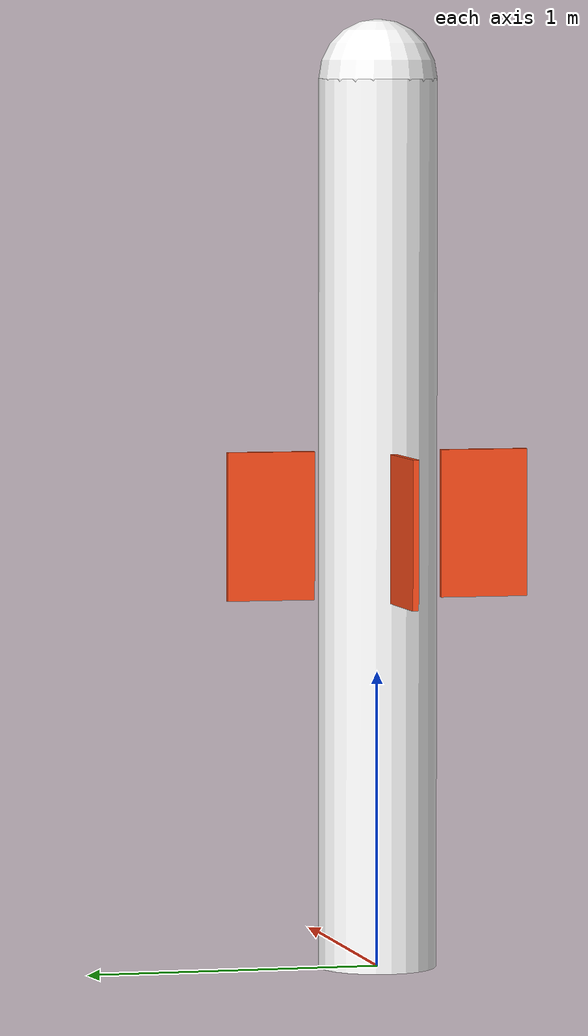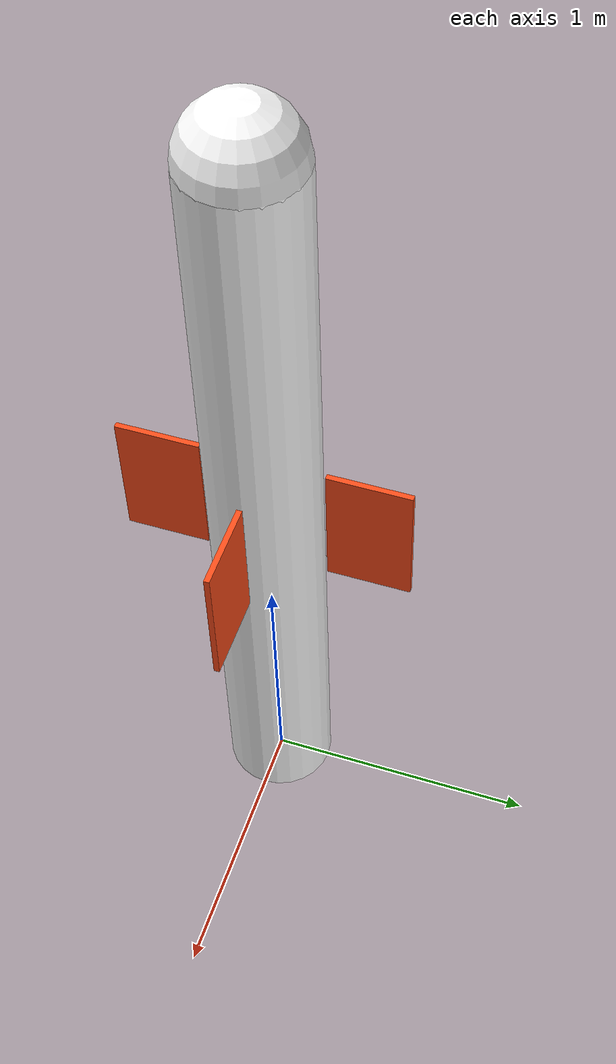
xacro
<robot xmlns:xacro="http://www.ros.org/wiki/xacro" name="generic_missile">
    <xacro:include filename="$(find generic_missile_description)/urdf/missile_core.xacro" />
    <xacro:include filename="$(find generic_missile_description)/gazebo/physical_missile.gazebo.xacro"/>
    <xacro:include filename="$(find generic_missile_description)/urdf/control_missile.xacro"/>
</robot>

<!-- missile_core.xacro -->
<robot xmlns:xacro="http://www.ros.org/wiki/xacro">

    <xacro:include filename="inertial_macros.xacro"/>
    <xacro:include filename="missile_properties.xacro"/>

    <link name="world"/>
    <gazebo reference="world">
      <static>true</static>
    </gazebo>

    <!-- base link -->

    <!-- missile main body -->
    <joint name="missile_joint" type="fixed">
        <parent link="world"/>
        <child link="missile_body"/>
        <origin xyz="0 0 0" rpy="0 0 0" />
    </joint>
    <link name="missile_body">
        <visual>
            <origin xyz="0 0 ${missile_length/2}"/>
            <geometry>
                <cylinder length="${missile_length}" radius="${missile_radius}"/>
            </geometry>
            <material name="white"/>
        </visual>
        <collision>
            <origin xyz="0 0 ${missile_length/2}"/>
            <geometry>
                <cylinder length="${missile_length}" radius="${missile_radius}"/>
            </geometry>
        </collision>
        <xacro:inertial_cylinder mass="1.0" length="${missile_length}" radius="${missile_radius}">
            <origin xyz="0 0 0" rpy="0 0 0"/>
        </xacro:inertial_cylinder>
    </link>

    <!-- head missile -->
    <joint name="head_joint" type="fixed">
        <parent link="missile_body" />
        <child link="warhead" />
        <origin xyz="0 0 ${missile_length}" rpy="0 0 0" />
    </joint>
    <link name="warhead">
        <visual>
            <geometry>
                <sphere radius="${missile_radius}"/>
            </geometry>
            <material name="white" />
        </visual>
        <collision>
            <geometry>
                <sphere radius="${missile_radius}"/>
            </geometry>
            <material name="white" />
        </collision>
        <xacro:inertial_sphere mass="${head_mass}" radius="${missile_radius}">
            <origin xyz="0 0 0" rpy="0 0 0"/>
        </xacro:inertial_sphere>
    </link>

    <xacro:include filename="wings_group.xacro"/>

</robot>

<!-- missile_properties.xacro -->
<robot xmlns:xacro="http://www.ros.org/wiki/xacro">
    <xacro:property name="missile_length" value="3" />
    <xacro:property name="missile_radius" value="0.2" />
    <xacro:property name="wing_wide" value="0.5" />
    <xacro:property name="wing_height" value="0.3" />
    <xacro:property name="wing_thickness" value="0.02" />
    <xacro:property name="finhold_height" value="0.1" />
    <xacro:property name="fin_wide" value="0.3" />
    <xacro:property name="fin_height" value="0.2" />

    <xacro:property name="fin_mass" value="0.001" />
    <xacro:property name="finhold_mass" value="0.3" />
    <xacro:property name="wing_mass" value="0.3" />
    <xacro:property name="body_mass" value="1" />
    <xacro:property name="head_mass" value="0.001" />

    <material name="white">
        <color rgba="1 1 1 1" />
    </material>

    <material name="orange">
        <color rgba="1 0.3 0.1 1"/>
    </material>

    <material name="blue">
        <color rgba="0.2 0.2 1 1"/>
    </material>

    <material name="black">
        <color rgba="0 0 0 1"/>
    </material>

</robot>

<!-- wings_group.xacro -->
<robot xmlns:xacro="http://www.ros.org/wiki/xacro">

    <xacro:macro name="wing_body_desc">
        <visual>
            <origin xyz="${wing_height/2} 0 0" />
            <geometry>
                <box size="${wing_height} ${wing_thickness} ${wing_wide}" />
            </geometry>
            <material name="orange"/>
        </visual>
        <collision>
            <origin xyz="${wing_height/2} 0 0" />
            <geometry>
                <box size="${wing_height} ${wing_thickness} ${wing_wide}" />
            </geometry>
        </collision>
        <xacro:inertial_box mass="${wing_mass}" x="${wing_height}" y="${wing_thickness}" z="${wing_thickness}">
            <origin xyz="${wing_height/2} 0 ${wing_wide/2}" rpy="0 0 0"/>
        </xacro:inertial_box>
    </xacro:macro>

    <!-- 1st wing -->
    <joint name="wing_1_joint" type="revolute">
        <parent link="missile_body"/>
        <child link="wing_1"/>
        <origin xyz="${missile_radius + 0.02} 0 ${missile_length/2}" rpy="0 0 0"/>
        <axis xyz="0 0 1"/>
        <limit lower="${-pi*2/3}" upper="${pi*2/3}" velocity="100" effort="100"/>
    </joint>
    <link name="wing_1">
        <xacro:wing_body_desc />
    </link>/>

    <!-- 2nd wing -->
    <joint name="wing_2_joint" type="revolute">
        <parent link="missile_body"/>
        <child link="wing_2"/>
        <origin xyz="0 ${missile_radius + 0.02} ${missile_length/2}" rpy="0 0 ${pi/2}"/>
        <axis xyz="0 0 1"/>
        <limit lower="${-pi*2/3}" upper="${pi*2/3}" velocity="100" effort="100"/>
    </joint>
    <link name="wing_2">
        <xacro:wing_body_desc />
    </link>/>

    <!-- 3rd wing -->
    <joint name="wing_3_joint" type="revolute">
        <parent link="missile_body"/>
        <child link="wing_3"/>
        <origin xyz="${-missile_radius - 0.02} 0 ${missile_length/2}" rpy="0 0 ${pi}"/>
        <axis xyz="0 0 1"/>
        <limit lower="${-pi*2/3}" upper="${pi*2/3}" velocity="100" effort="100"/>
    </joint>
    <link name="wing_3">
        <xacro:wing_body_desc />
    </link>/>

    <!-- 4th wing -->
    <joint name="wing_4_joint" type="revolute">
        <parent link="missile_body"/>
        <child link="wing_4"/>
        <origin xyz="0 ${-missile_radius - 0.02} ${missile_length/2}" rpy="0 0 ${-pi/2}"/>
        <axis xyz="0 0 1"/>
        <limit lower="${-pi*2/3}" upper="${pi*2/3}" velocity="100" effort="100"/>
    </joint>
    <link name="wing_4">
        <xacro:wing_body_desc />
    </link>/>
</robot>
